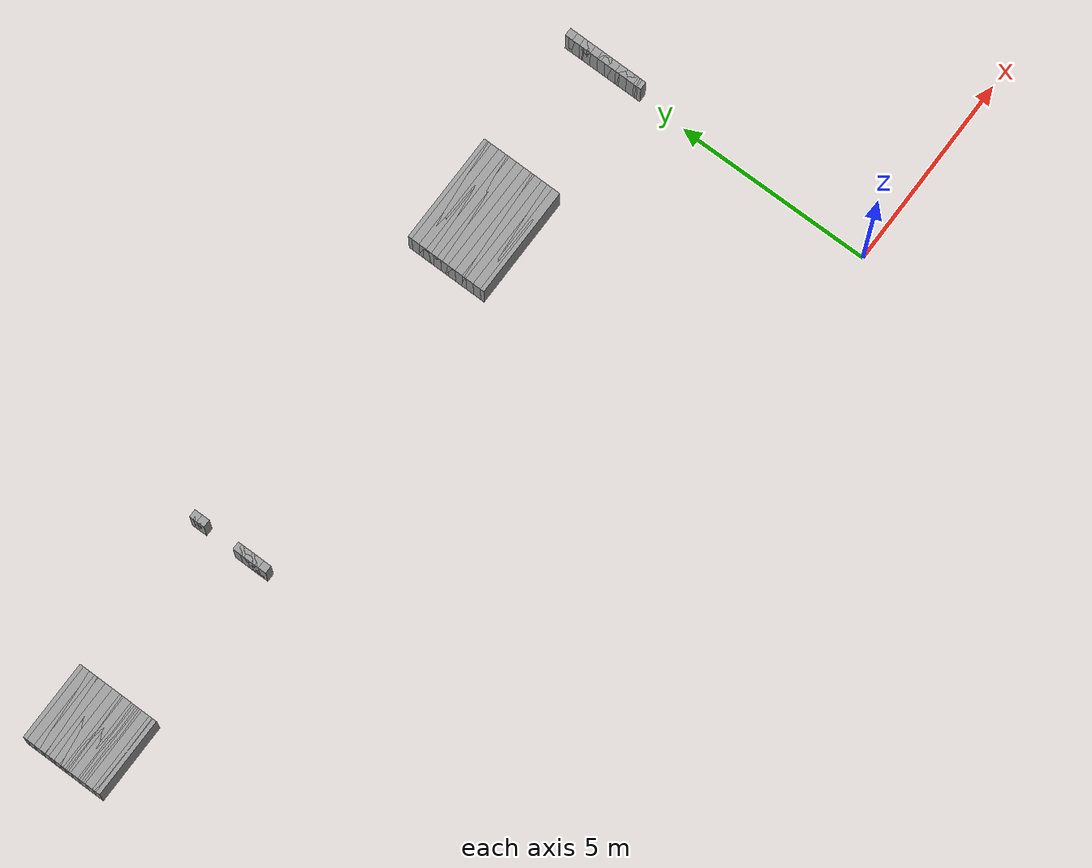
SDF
<sdf version="1.6">
 <world name="GridMap">
  <model name="GridMap">
   <link name="Wall_(189.0,61.0)">
    <collision name="Wall_(189.0,61.0)_Collision">
     <geometry><box><size>2.0 0.2 1.0</size></box></geometry>
     <pose>-18.9 6.1 0.5 0 -0 0</pose>
    </collision>
    <visual name="Wall_(189.0,61.0)_Visual">
     <geometry><box><size>2.0 0.2 1.0</size></box></geometry>
     <pose>-18.9 6.1 0.5 0 -0 0</pose>
     <material>
      <script><uri>file://media/materials/scripts/gazebo.material</uri><name>Gazebo/Grey</name></script>
      <ambient>1 1 1 1</ambient>
     </material>
     <meta><layer>0</layer></meta>
    </visual>
    <pose>0 0 0.5 0 -0 0</pose>
   </link>
   <link name="Wall_(1.0,62.0)">
    <collision name="Wall_(1.0,62.0)_Collision">
     <geometry><box><size>0.2 0.2 1.0</size></box></geometry>
     <pose>-0.1 6.2 0.5 0 -0 0</pose>
    </collision>
    <visual name="Wall_(1.0,62.0)_Visual">
     <geometry><box><size>0.2 0.2 1.0</size></box></geometry>
     <pose>-0.1 6.2 0.5 0 -0 0</pose>
     <material>
      <script><uri>file://media/materials/scripts/gazebo.material</uri><name>Gazebo/Grey</name></script>
      <ambient>1 1 1 1</ambient>
     </material>
     <meta><layer>0</layer></meta>
    </visual>
    <pose>0 0 0.5 0 -0 0</pose>
   </link>
   <link name="Wall_(46.0,62.0)">
    <collision name="Wall_(46.0,62.0)_Collision">
     <geometry><box><size>2.8 0.2 1.0</size></box></geometry>
     <pose>-4.6 6.2 0.5 0 -0 0</pose>
    </collision>
    <visual name="Wall_(46.0,62.0)_Visual">
     <geometry><box><size>2.8 0.2 1.0</size></box></geometry>
     <pose>-4.6 6.2 0.5 0 -0 0</pose>
     <material>
      <script><uri>file://media/materials/scripts/gazebo.material</uri><name>Gazebo/Grey</name></script>
      <ambient>1 1 1 1</ambient>
     </material>
     <meta><layer>0</layer></meta>
    </visual>
    <pose>0 0 0.5 0 -0 0</pose>
   </link>
   <link name="Wall_(138.0,62.0)">
    <collision name="Wall_(138.0,62.0)_Collision">
     <geometry><box><size>0.2 0.2 1.0</size></box></geometry>
     <pose>-13.8 6.2 0.5 0 -0 0</pose>
    </collision>
    <visual name="Wall_(138.0,62.0)_Visual">
     <geometry><box><size>0.2 0.2 1.0</size></box></geometry>
     <pose>-13.8 6.2 0.5 0 -0 0</pose>
     <material>
      <script><uri>file://media/materials/scripts/gazebo.material</uri><name>Gazebo/Grey</name></script>
      <ambient>1 1 1 1</ambient>
     </material>
     <meta><layer>0</layer></meta>
    </visual>
    <pose>0 0 0.5 0 -0 0</pose>
   </link>
   <link name="Wall_(189.0,62.0)">
    <collision name="Wall_(189.0,62.0)_Collision">
     <geometry><box><size>2.0 0.2 1.0</size></box></geometry>
     <pose>-18.9 6.2 0.5 0 -0 0</pose>
    </collision>
    <visual name="Wall_(189.0,62.0)_Visual">
     <geometry><box><size>2.0 0.2 1.0</size></box></geometry>
     <pose>-18.9 6.2 0.5 0 -0 0</pose>
     <material>
      <script><uri>file://media/materials/scripts/gazebo.material</uri><name>Gazebo/Grey</name></script>
      <ambient>1 1 1 1</ambient>
     </material>
     <meta><layer>0</layer></meta>
    </visual>
    <pose>0 0 0.5 0 -0 0</pose>
   </link>
   <link name="Wall_(1.0,63.0)">
    <collision name="Wall_(1.0,63.0)_Collision">
     <geometry><box><size>0.2 0.2 1.0</size></box></geometry>
     <pose>-0.1 6.3 0.5 0 -0 0</pose>
    </collision>
    <visual name="Wall_(1.0,63.0)_Visual">
     <geometry><box><size>0.2 0.2 1.0</size></box></geometry>
     <pose>-0.1 6.3 0.5 0 -0 0</pose>
     <material>
      <script><uri>file://media/materials/scripts/gazebo.material</uri><name>Gazebo/Grey</name></script>
      <ambient>1 1 1 1</ambient>
     </material>
     <meta><layer>0</layer></meta>
    </visual>
    <pose>0 0 0.5 0 -0 0</pose>
   </link>
   <link name="Wall_(46.0,63.0)">
    <collision name="Wall_(46.0,63.0)_Collision">
     <geometry><box><size>2.8 0.2 1.0</size></box></geometry>
     <pose>-4.6 6.3 0.5 0 -0 0</pose>
    </collision>
    <visual name="Wall_(46.0,63.0)_Visual">
     <geometry><box><size>2.8 0.2 1.0</size></box></geometry>
     <pose>-4.6 6.3 0.5 0 -0 0</pose>
     <material>
      <script><uri>file://media/materials/scripts/gazebo.material</uri><name>Gazebo/Grey</name></script>
      <ambient>1 1 1 1</ambient>
     </material>
     <meta><layer>0</layer></meta>
    </visual>
    <pose>0 0 0.5 0 -0 0</pose>
   </link>
   <link name="Wall_(138.0,63.0)">
    <collision name="Wall_(138.0,63.0)_Collision">
     <geometry><box><size>0.2 0.2 1.0</size></box></geometry>
     <pose>-13.8 6.3 0.5 0 -0 0</pose>
    </collision>
    <visual name="Wall_(138.0,63.0)_Visual">
     <geometry><box><size>0.2 0.2 1.0</size></box></geometry>
     <pose>-13.8 6.3 0.5 0 -0 0</pose>
     <material>
      <script><uri>file://media/materials/scripts/gazebo.material</uri><name>Gazebo/Grey</name></script>
      <ambient>1 1 1 1</ambient>
     </material>
     <meta><layer>0</layer></meta>
    </visual>
    <pose>0 0 0.5 0 -0 0</pose>
   </link>
   <link name="Wall_(189.0,63.0)">
    <collision name="Wall_(189.0,63.0)_Collision">
     <geometry><box><size>2.0 0.2 1.0</size></box></geometry>
     <pose>-18.9 6.3 0.5 0 -0 0</pose>
    </collision>
    <visual name="Wall_(189.0,63.0)_Visual">
     <geometry><box><size>2.0 0.2 1.0</size></box></geometry>
     <pose>-18.9 6.3 0.5 0 -0 0</pose>
     <material>
      <script><uri>file://media/materials/scripts/gazebo.material</uri><name>Gazebo/Grey</name></script>
      <ambient>1 1 1 1</ambient>
     </material>
     <meta><layer>0</layer></meta>
    </visual>
    <pose>0 0 0.5 0 -0 0</pose>
   </link>
   <link name="Wall_(1.0,64.0)">
    <collision name="Wall_(1.0,64.0)_Collision">
     <geometry><box><size>0.2 0.2 1.0</size></box></geometry>
     <pose>-0.1 6.4 0.5 0 -0 0</pose>
    </collision>
    <visual name="Wall_(1.0,64.0)_Visual">
     <geometry><box><size>0.2 0.2 1.0</size></box></geometry>
     <pose>-0.1 6.4 0.5 0 -0 0</pose>
     <material>
      <script><uri>file://media/materials/scripts/gazebo.material</uri><name>Gazebo/Grey</name></script>
      <ambient>1 1 1 1</ambient>
     </material>
     <meta><layer>0</layer></meta>
    </visual>
    <pose>0 0 0.5 0 -0 0</pose>
   </link>
   <link name="Wall_(46.0,64.0)">
    <collision name="Wall_(46.0,64.0)_Collision">
     <geometry><box><size>2.8 0.2 1.0</size></box></geometry>
     <pose>-4.6 6.4 0.5 0 -0 0</pose>
    </collision>
    <visual name="Wall_(46.0,64.0)_Visual">
     <geometry><box><size>2.8 0.2 1.0</size></box></geometry>
     <pose>-4.6 6.4 0.5 0 -0 0</pose>
     <material>
      <script><uri>file://media/materials/scripts/gazebo.material</uri><name>Gazebo/Grey</name></script>
      <ambient>1 1 1 1</ambient>
     </material>
     <meta><layer>0</layer></meta>
    </visual>
    <pose>0 0 0.5 0 -0 0</pose>
   </link>
   <link name="Wall_(138.0,64.0)">
    <collision name="Wall_(138.0,64.0)_Collision">
     <geometry><box><size>0.2 0.2 1.0</size></box></geometry>
     <pose>-13.8 6.4 0.5 0 -0 0</pose>
    </collision>
    <visual name="Wall_(138.0,64.0)_Visual">
     <geometry><box><size>0.2 0.2 1.0</size></box></geometry>
     <pose>-13.8 6.4 0.5 0 -0 0</pose>
     <material>
      <script><uri>file://media/materials/scripts/gazebo.material</uri><name>Gazebo/Grey</name></script>
      <ambient>1 1 1 1</ambient>
     </material>
     <meta><layer>0</layer></meta>
    </visual>
    <pose>0 0 0.5 0 -0 0</pose>
   </link>
   <link name="Wall_(189.0,64.0)">
    <collision name="Wall_(189.0,64.0)_Collision">
     <geometry><box><size>2.0 0.2 1.0</size></box></geometry>
     <pose>-18.9 6.4 0.5 0 -0 0</pose>
    </collision>
    <visual name="Wall_(189.0,64.0)_Visual">
     <geometry><box><size>2.0 0.2 1.0</size></box></geometry>
     <pose>-18.9 6.4 0.5 0 -0 0</pose>
     <material>
      <script><uri>file://media/materials/scripts/gazebo.material</uri><name>Gazebo/Grey</name></script>
      <ambient>1 1 1 1</ambient>
     </material>
     <meta><layer>0</layer></meta>
    </visual>
    <pose>0 0 0.5 0 -0 0</pose>
   </link>
   <link name="Wall_(1.0,65.0)">
    <collision name="Wall_(1.0,65.0)_Collision">
     <geometry><box><size>0.2 0.2 1.0</size></box></geometry>
     <pose>-0.1 6.5 0.5 0 -0 0</pose>
    </collision>
    <visual name="Wall_(1.0,65.0)_Visual">
     <geometry><box><size>0.2 0.2 1.0</size></box></geometry>
     <pose>-0.1 6.5 0.5 0 -0 0</pose>
     <material>
      <script><uri>file://media/materials/scripts/gazebo.material</uri><name>Gazebo/Grey</name></script>
      <ambient>1 1 1 1</ambient>
     </material>
     <meta><layer>0</layer></meta>
    </visual>
    <pose>0 0 0.5 0 -0 0</pose>
   </link>
   <link name="Wall_(46.0,65.0)">
    <collision name="Wall_(46.0,65.0)_Collision">
     <geometry><box><size>2.8 0.2 1.0</size></box></geometry>
     <pose>-4.6 6.5 0.5 0 -0 0</pose>
    </collision>
    <visual name="Wall_(46.0,65.0)_Visual">
     <geometry><box><size>2.8 0.2 1.0</size></box></geometry>
     <pose>-4.6 6.5 0.5 0 -0 0</pose>
     <material>
      <script><uri>file://media/materials/scripts/gazebo.material</uri><name>Gazebo/Grey</name></script>
      <ambient>1 1 1 1</ambient>
     </material>
     <meta><layer>0</layer></meta>
    </visual>
    <pose>0 0 0.5 0 -0 0</pose>
   </link>
   <link name="Wall_(138.0,65.0)">
    <collision name="Wall_(138.0,65.0)_Collision">
     <geometry><box><size>0.2 0.2 1.0</size></box></geometry>
     <pose>-13.8 6.5 0.5 0 -0 0</pose>
    </collision>
    <visual name="Wall_(138.0,65.0)_Visual">
     <geometry><box><size>0.2 0.2 1.0</size></box></geometry>
     <pose>-13.8 6.5 0.5 0 -0 0</pose>
     <material>
      <script><uri>file://media/materials/scripts/gazebo.material</uri><name>Gazebo/Grey</name></script>
      <ambient>1 1 1 1</ambient>
     </material>
     <meta><layer>0</layer></meta>
    </visual>
    <pose>0 0 0.5 0 -0 0</pose>
   </link>
   <link name="Wall_(189.0,65.0)">
    <collision name="Wall_(189.0,65.0)_Collision">
     <geometry><box><size>2.0 0.2 1.0</size></box></geometry>
     <pose>-18.9 6.5 0.5 0 -0 0</pose>
    </collision>
    <visual name="Wall_(189.0,65.0)_Visual">
     <geometry><box><size>2.0 0.2 1.0</size></box></geometry>
     <pose>-18.9 6.5 0.5 0 -0 0</pose>
     <material>
      <script><uri>file://media/materials/scripts/gazebo.material</uri><name>Gazebo/Grey</name></script>
      <ambient>1 1 1 1</ambient>
     </material>
     <meta><layer>0</layer></meta>
    </visual>
    <pose>0 0 0.5 0 -0 0</pose>
   </link>
   <link name="Wall_(1.0,66.0)">
    <collision name="Wall_(1.0,66.0)_Collision">
     <geometry><box><size>0.2 0.2 1.0</size></box></geometry>
     <pose>-0.1 6.6 0.5 0 -0 0</pose>
    </collision>
    <visual name="Wall_(1.0,66.0)_Visual">
     <geometry><box><size>0.2 0.2 1.0</size></box></geometry>
     <pose>-0.1 6.6 0.5 0 -0 0</pose>
     <material>
      <script><uri>file://media/materials/scripts/gazebo.material</uri><name>Gazebo/Grey</name></script>
      <ambient>1 1 1 1</ambient>
     </material>
     <meta><layer>0</layer></meta>
    </visual>
    <pose>0 0 0.5 0 -0 0</pose>
   </link>
   <link name="Wall_(46.0,66.0)">
    <collision name="Wall_(46.0,66.0)_Collision">
     <geometry><box><size>2.8 0.2 1.0</size></box></geometry>
     <pose>-4.6 6.6 0.5 0 -0 0</pose>
    </collision>
    <visual name="Wall_(46.0,66.0)_Visual">
     <geometry><box><size>2.8 0.2 1.0</size></box></geometry>
     <pose>-4.6 6.6 0.5 0 -0 0</pose>
     <material>
      <script><uri>file://media/materials/scripts/gazebo.material</uri><name>Gazebo/Grey</name></script>
      <ambient>1 1 1 1</ambient>
     </material>
     <meta><layer>0</layer></meta>
    </visual>
    <pose>0 0 0.5 0 -0 0</pose>
   </link>
   <link name="Wall_(138.0,66.0)">
    <collision name="Wall_(138.0,66.0)_Collision">
     <geometry><box><size>0.2 0.2 1.0</size></box></geometry>
     <pose>-13.8 6.6 0.5 0 -0 0</pose>
    </collision>
    <visual name="Wall_(138.0,66.0)_Visual">
     <geometry><box><size>0.2 0.2 1.0</size></box></geometry>
     <pose>-13.8 6.6 0.5 0 -0 0</pose>
     <material>
      <script><uri>file://media/materials/scripts/gazebo.material</uri><name>Gazebo/Grey</name></script>
      <ambient>1 1 1 1</ambient>
     </material>
     <meta><layer>0</layer></meta>
    </visual>
    <pose>0 0 0.5 0 -0 0</pose>
   </link>
   <link name="Wall_(189.0,66.0)">
    <collision name="Wall_(189.0,66.0)_Collision">
     <geometry><box><size>2.0 0.2 1.0</size></box></geometry>
     <pose>-18.9 6.6 0.5 0 -0 0</pose>
    </collision>
    <visual name="Wall_(189.0,66.0)_Visual">
     <geometry><box><size>2.0 0.2 1.0</size></box></geometry>
     <pose>-18.9 6.6 0.5 0 -0 0</pose>
     <material>
      <script><uri>file://media/materials/scripts/gazebo.material</uri><name>Gazebo/Grey</name></script>
      <ambient>1 1 1 1</ambient>
     </material>
     <meta><layer>0</layer></meta>
    </visual>
    <pose>0 0 0.5 0 -0 0</pose>
   </link>
   <link name="Wall_(1.0,67.0)">
    <collision name="Wall_(1.0,67.0)_Collision">
     <geometry><box><size>0.2 0.2 1.0</size></box></geometry>
     <pose>-0.1 6.7 0.5 0 -0 0</pose>
    </collision>
    <visual name="Wall_(1.0,67.0)_Visual">
     <geometry><box><size>0.2 0.2 1.0</size></box></geometry>
     <pose>-0.1 6.7 0.5 0 -0 0</pose>
     <material>
      <script><uri>file://media/materials/scripts/gazebo.material</uri><name>Gazebo/Grey</name></script>
      <ambient>1 1 1 1</ambient>
     </material>
     <meta><layer>0</layer></meta>
    </visual>
    <pose>0 0 0.5 0 -0 0</pose>
   </link>
   <link name="Wall_(46.0,67.0)">
    <collision name="Wall_(46.0,67.0)_Collision">
     <geometry><box><size>2.8 0.2 1.0</size></box></geometry>
     <pose>-4.6 6.7 0.5 0 -0 0</pose>
    </collision>
    <visual name="Wall_(46.0,67.0)_Visual">
     <geometry><box><size>2.8 0.2 1.0</size></box></geometry>
     <pose>-4.6 6.7 0.5 0 -0 0</pose>
     <material>
      <script><uri>file://media/materials/scripts/gazebo.material</uri><name>Gazebo/Grey</name></script>
      <ambient>1 1 1 1</ambient>
     </material>
     <meta><layer>0</layer></meta>
    </visual>
    <pose>0 0 0.5 0 -0 0</pose>
   </link>
   <link name="Wall_(138.0,67.0)">
    <collision name="Wall_(138.0,67.0)_Collision">
     <geometry><box><size>0.2 0.2 1.0</size></box></geometry>
     <pose>-13.8 6.7 0.5 0 -0 0</pose>
    </collision>
    <visual name="Wall_(138.0,67.0)_Visual">
     <geometry><box><size>0.2 0.2 1.0</size></box></geometry>
     <pose>-13.8 6.7 0.5 0 -0 0</pose>
     <material>
      <script><uri>file://media/materials/scripts/gazebo.material</uri><name>Gazebo/Grey</name></script>
      <ambient>1 1 1 1</ambient>
     </material>
     <meta><layer>0</layer></meta>
    </visual>
    <pose>0 0 0.5 0 -0 0</pose>
   </link>
   <link name="Wall_(189.0,67.0)">
    <collision name="Wall_(189.0,67.0)_Collision">
     <geometry><box><size>2.0 0.2 1.0</size></box></geometry>
     <pose>-18.9 6.7 0.5 0 -0 0</pose>
    </collision>
    <visual name="Wall_(189.0,67.0)_Visual">
     <geometry><box><size>2.0 0.2 1.0</size></box></geometry>
     <pose>-18.9 6.7 0.5 0 -0 0</pose>
     <material>
      <script><uri>file://media/materials/scripts/gazebo.material</uri><name>Gazebo/Grey</name></script>
      <ambient>1 1 1 1</ambient>
     </material>
     <meta><layer>0</layer></meta>
    </visual>
    <pose>0 0 0.5 0 -0 0</pose>
   </link>
   <link name="Wall_(1.0,68.0)">
    <collision name="Wall_(1.0,68.0)_Collision">
     <geometry><box><size>0.2 0.2 1.0</size></box></geometry>
     <pose>-0.1 6.8 0.5 0 -0 0</pose>
    </collision>
    <visual name="Wall_(1.0,68.0)_Visual">
     <geometry><box><size>0.2 0.2 1.0</size></box></geometry>
     <pose>-0.1 6.8 0.5 0 -0 0</pose>
     <material>
      <script><uri>file://media/materials/scripts/gazebo.material</uri><name>Gazebo/Grey</name></script>
      <ambient>1 1 1 1</ambient>
     </material>
     <meta><layer>0</layer></meta>
    </visual>
    <pose>0 0 0.5 0 -0 0</pose>
   </link>
   <link name="Wall_(46.0,68.0)">
    <collision name="Wall_(46.0,68.0)_Collision">
     <geometry><box><size>2.8 0.2 1.0</size></box></geometry>
     <pose>-4.6 6.8 0.5 0 -0 0</pose>
    </collision>
    <visual name="Wall_(46.0,68.0)_Visual">
     <geometry><box><size>2.8 0.2 1.0</size></box></geometry>
     <pose>-4.6 6.8 0.5 0 -0 0</pose>
     <material>
      <script><uri>file://media/materials/scripts/gazebo.material</uri><name>Gazebo/Grey</name></script>
      <ambient>1 1 1 1</ambient>
     </material>
     <meta><layer>0</layer></meta>
    </visual>
    <pose>0 0 0.5 0 -0 0</pose>
   </link>
   <link name="Wall_(138.0,68.0)">
    <collision name="Wall_(138.0,68.0)_Collision">
     <geometry><box><size>0.2 0.2 1.0</size></box></geometry>
     <pose>-13.8 6.8 0.5 0 -0 0</pose>
    </collision>
    <visual name="Wall_(138.0,68.0)_Visual">
     <geometry><box><size>0.2 0.2 1.0</size></box></geometry>
     <pose>-13.8 6.8 0.5 0 -0 0</pose>
     <material>
      <script><uri>file://media/materials/scripts/gazebo.material</uri><name>Gazebo/Grey</name></script>
      <ambient>1 1 1 1</ambient>
     </material>
     <meta><layer>0</layer></meta>
    </visual>
    <pose>0 0 0.5 0 -0 0</pose>
   </link>
   <link name="Wall_(189.0,68.0)">
    <collision name="Wall_(189.0,68.0)_Collision">
     <geometry><box><size>2.0 0.2 1.0</size></box></geometry>
     <pose>-18.9 6.8 0.5 0 -0 0</pose>
    </collision>
    <visual name="Wall_(189.0,68.0)_Visual">
     <geometry><box><size>2.0 0.2 1.0</size></box></geometry>
     <pose>-18.9 6.8 0.5 0 -0 0</pose>
     <material>
      <script><uri>file://media/materials/scripts/gazebo.material</uri><name>Gazebo/Grey</name></script>
      <ambient>1 1 1 1</ambient>
     </material>
     <meta><layer>0</layer></meta>
    </visual>
    <pose>0 0 0.5 0 -0 0</pose>
   </link>
   <link name="Wall_(1.0,69.0)">
    <collision name="Wall_(1.0,69.0)_Collision">
     <geometry><box><size>0.2 0.2 1.0</size></box></geometry>
     <pose>-0.1 6.9 0.5 0 -0 0</pose>
    </collision>
    <visual name="Wall_(1.0,69.0)_Visual">
     <geometry><box><size>0.2 0.2 1.0</size></box></geometry>
     <pose>-0.1 6.9 0.5 0 -0 0</pose>
     <material>
      <script><uri>file://media/materials/scripts/gazebo.material</uri><name>Gazebo/Grey</name></script>
      <ambient>1 1 1 1</ambient>
     </material>
     <meta><layer>0</layer></meta>
    </visual>
    <pose>0 0 0.5 0 -0 0</pose>
   </link>
   <link name="Wall_(46.0,69.0)">
    <collision name="Wall_(46.0,69.0)_Collision">
     <geometry><box><size>2.8 0.2 1.0</size></box></geometry>
     <pose>-4.6 6.9 0.5 0 -0 0</pose>
    </collision>
    <visual name="Wall_(46.0,69.0)_Visual">
     <geometry><box><size>2.8 0.2 1.0</size></box></geometry>
     <pose>-4.6 6.9 0.5 0 -0 0</pose>
     <material>
      <script><uri>file://media/materials/scripts/gazebo.material</uri><name>Gazebo/Grey</name></script>
      <ambient>1 1 1 1</ambient>
     </material>
     <meta><layer>0</layer></meta>
    </visual>
    <pose>0 0 0.5 0 -0 0</pose>
   </link>
   <link name="Wall_(138.0,69.0)">
    <collision name="Wall_(138.0,69.0)_Collision">
     <geometry><box><size>0.2 0.2 1.0</size></box></geometry>
     <pose>-13.8 6.9 0.5 0 -0 0</pose>
    </collision>
    <visual name="Wall_(138.0,69.0)_Visual">
     <geometry><box><size>0.2 0.2 1.0</size></box></geometry>
     <pose>-13.8 6.9 0.5 0 -0 0</pose>
     <material>
      <script><uri>file://media/materials/scripts/gazebo.material</uri><name>Gazebo/Grey</name></script>
      <ambient>1 1 1 1</ambient>
     </material>
     <meta><layer>0</layer></meta>
    </visual>
    <pose>0 0 0.5 0 -0 0</pose>
   </link>
   <link name="Wall_(189.0,69.0)">
    <collision name="Wall_(189.0,69.0)_Collision">
     <geometry><box><size>2.0 0.2 1.0</size></box></geometry>
     <pose>-18.9 6.9 0.5 0 -0 0</pose>
    </collision>
    <visual name="Wall_(189.0,69.0)_Visual">
     <geometry><box><size>2.0 0.2 1.0</size></box></geometry>
     <pose>-18.9 6.9 0.5 0 -0 0</pose>
     <material>
      <script><uri>file://media/materials/scripts/gazebo.material</uri><name>Gazebo/Grey</name></script>
      <ambient>1 1 1 1</ambient>
     </material>
     <meta><layer>0</layer></meta>
    </visual>
    <pose>0 0 0.5 0 -0 0</pose>
   </link>
   <link name="Wall_(1.0,70.0)">
    <collision name="Wall_(1.0,70.0)_Collision">
     <geometry><box><size>0.2 0.2 1.0</size></box></geometry>
     <pose>-0.1 7.0 0.5 0 -0 0</pose>
    </collision>
    <visual name="Wall_(1.0,70.0)_Visual">
     <geometry><box><size>0.2 0.2 1.0</size></box></geometry>
     <pose>-0.1 7.0 0.5 0 -0 0</pose>
     <material>
      <script><uri>file://media/materials/scripts/gazebo.material</uri><name>Gazebo/Grey</name></script>
      <ambient>1 1 1 1</ambient>
     </material>
     <meta><layer>0</layer></meta>
    </visual>
    <pose>0 0 0.5 0 -0 0</pose>
   </link>
   <link name="Wall_(46.0,70.0)">
    <collision name="Wall_(46.0,70.0)_Collision">
     <geometry><box><size>2.8 0.2 1.0</size></box></geometry>
     <pose>-4.6 7.0 0.5 0 -0 0</pose>
    </collision>
    <visual name="Wall_(46.0,70.0)_Visual">
     <geometry><box><size>2.8 0.2 1.0</size></box></geometry>
     <pose>-4.6 7.0 0.5 0 -0 0</pose>
     <material>
      <script><uri>file://media/materials/scripts/gazebo.material</uri><name>Gazebo/Grey</name></script>
      <ambient>1 1 1 1</ambient>
     </material>
     <meta><layer>0</layer></meta>
    </visual>
    <pose>0 0 0.5 0 -0 0</pose>
   </link>
   <link name="Wall_(189.0,70.0)">
    <collision name="Wall_(189.0,70.0)_Collision">
     <geometry><box><size>2.0 0.2 1.0</size></box></geometry>
     <pose>-18.9 7.0 0.5 0 -0 0</pose>
    </collision>
    <visual name="Wall_(189.0,70.0)_Visual">
     <geometry><box><size>2.0 0.2 1.0</size></box></geometry>
     <pose>-18.9 7.0 0.5 0 -0 0</pose>
     <material>
      <script><uri>file://media/materials/scripts/gazebo.material</uri><name>Gazebo/Grey</name></script>
      <ambient>1 1 1 1</ambient>
     </material>
     <meta><layer>0</layer></meta>
    </visual>
    <pose>0 0 0.5 0 -0 0</pose>
   </link>
   <link name="Wall_(1.0,71.0)">
    <collision name="Wall_(1.0,71.0)_Collision">
     <geometry><box><size>0.2 0.2 1.0</size></box></geometry>
     <pose>-0.1 7.1 0.5 0 -0 0</pose>
    </collision>
    <visual name="Wall_(1.0,71.0)_Visual">
     <geometry><box><size>0.2 0.2 1.0</size></box></geometry>
     <pose>-0.1 7.1 0.5 0 -0 0</pose>
     <material>
      <script><uri>file://media/materials/scripts/gazebo.material</uri><name>Gazebo/Grey</name></script>
      <ambient>1 1 1 1</ambient>
     </material>
     <meta><layer>0</layer></meta>
    </visual>
    <pose>0 0 0.5 0 -0 0</pose>
   </link>
   <link name="Wall_(46.0,71.0)">
    <collision name="Wall_(46.0,71.0)_Collision">
     <geometry><box><size>2.8 0.2 1.0</size></box></geometry>
     <pose>-4.6 7.1 0.5 0 -0 0</pose>
    </collision>
    <visual name="Wall_(46.0,71.0)_Visual">
     <geometry><box><size>2.8 0.2 1.0</size></box></geometry>
     <pose>-4.6 7.1 0.5 0 -0 0</pose>
     <material>
      <script><uri>file://media/materials/scripts/gazebo.material</uri><name>Gazebo/Grey</name></script>
      <ambient>1 1 1 1</ambient>
     </material>
     <meta><layer>0</layer></meta>
    </visual>
    <pose>0 0 0.5 0 -0 0</pose>
   </link>
   <link name="Wall_(189.0,71.0)">
    <collision name="Wall_(189.0,71.0)_Collision">
     <geometry><box><size>2.0 0.2 1.0</size></box></geometry>
     <pose>-18.9 7.1 0.5 0 -0 0</pose>
    </collision>
    <visual name="Wall_(189.0,71.0)_Visual">
     <geometry><box><size>2.0 0.2 1.0</size></box></geometry>
     <pose>-18.9 7.1 0.5 0 -0 0</pose>
     <material>
      <script><uri>file://media/materials/scripts/gazebo.material</uri><name>Gazebo/Grey</name></script>
      <ambient>1 1 1 1</ambient>
     </material>
     <meta><layer>0</layer></meta>
    </visual>
    <pose>0 0 0.5 0 -0 0</pose>
   </link>
   <link name="Wall_(1.0,72.0)">
    <collision name="Wall_(1.0,72.0)_Collision">
     <geometry><box><size>0.2 0.2 1.0</size></box></geometry>
     <pose>-0.1 7.2 0.5 0 -0 0</pose>
    </collision>
    <visual name="Wall_(1.0,72.0)_Visual">
     <geometry><box><size>0.2 0.2 1.0</size></box></geometry>
     <pose>-0.1 7.2 0.5 0 -0 0</pose>
     <material>
      <script><uri>file://media/materials/scripts/gazebo.material</uri><name>Gazebo/Grey</name></script>
      <ambient>1 1 1 1</ambient>
     </material>
     <meta><layer>0</layer></meta>
    </visual>
    <pose>0 0 0.5 0 -0 0</pose>
   </link>
   <link name="Wall_(46.0,72.0)">
    <collision name="Wall_(46.0,72.0)_Collision">
     <geometry><box><size>2.8 0.2 1.0</size></box></geometry>
     <pose>-4.6 7.2 0.5 0 -0 0</pose>
    </collision>
    <visual name="Wall_(46.0,72.0)_Visual">
     <geometry><box><size>2.8 0.2 1.0</size></box></geometry>
     <pose>-4.6 7.2 0.5 0 -0 0</pose>
     <material>
      <script><uri>file://media/materials/scripts/gazebo.material</uri><name>Gazebo/Grey</name></script>
      <ambient>1 1 1 1</ambient>
     </material>
     <meta><layer>0</layer></meta>
    </visual>
    <pose>0 0 0.5 0 -0 0</pose>
   </link>
   <link name="Wall_(189.0,72.0)">
    <collision name="Wall_(189.0,72.0)_Collision">
     <geometry><box><size>2.0 0.2 1.0</size></box></geometry>
     <pose>-18.9 7.2 0.5 0 -0 0</pose>
    </collision>
    <visual name="Wall_(189.0,72.0)_Visual">
     <geometry><box><size>2.0 0.2 1.0</size></box></geometry>
     <pose>-18.9 7.2 0.5 0 -0 0</pose>
     <material>
      <script><uri>file://media/materials/scripts/gazebo.material</uri><name>Gazebo/Grey</name></script>
      <ambient>1 1 1 1</ambient>
     </material>
     <meta><layer>0</layer></meta>
    </visual>
    <pose>0 0 0.5 0 -0 0</pose>
   </link>
   <link name="Wall_(1.0,73.0)">
    <collision name="Wall_(1.0,73.0)_Collision">
     <geometry><box><size>0.2 0.2 1.0</size></box></geometry>
     <pose>-0.1 7.3 0.5 0 -0 0</pose>
    </collision>
    <visual name="Wall_(1.0,73.0)_Visual">
     <geometry><box><size>0.2 0.2 1.0</size></box></geometry>
     <pose>-0.1 7.3 0.5 0 -0 0</pose>
     <material>
      <script><uri>file://media/materials/scripts/gazebo.material</uri><name>Gazebo/Grey</name></script>
      <ambient>1 1 1 1</ambient>
     </material>
     <meta><layer>0</layer></meta>
    </visual>
    <pose>0 0 0.5 0 -0 0</pose>
   </link>
   <link name="Wall_(46.0,73.0)">
    <collision name="Wall_(46.0,73.0)_Collision">
     <geometry><box><size>2.8 0.2 1.0</size></box></geometry>
     <pose>-4.6 7.3 0.5 0 -0 0</pose>
    </collision>
    <visual name="Wall_(46.0,73.0)_Visual">
     <geometry><box><size>2.8 0.2 1.0</size></box></geometry>
     <pose>-4.6 7.3 0.5 0 -0 0</pose>
     <material>
      <script><uri>file://media/materials/scripts/gazebo.material</uri><name>Gazebo/Grey</name></script>
      <ambient>1 1 1 1</ambient>
     </material>
     <meta><layer>0</layer></meta>
    </visual>
    <pose>0 0 0.5 0 -0 0</pose>
   </link>
   <link name="Wall_(189.0,73.0)">
    <collision name="Wall_(189.0,73.0)_Collision">
     <geometry><box><size>2.0 0.2 1.0</size></box></geometry>
     <pose>-18.9 7.3 0.5 0 -0 0</pose>
    </collision>
    <visual name="Wall_(189.0,73.0)_Visual">
     <geometry><box><size>2.0 0.2 1.0</size></box></geometry>
     <pose>-18.9 7.3 0.5 0 -0 0</pose>
     <material>
      <script><uri>file://media/materials/scripts/gazebo.material</uri><name>Gazebo/Grey</name></script>
      <ambient>1 1 1 1</ambient>
     </material>
     <meta><layer>0</layer></meta>
    </visual>
    <pose>0 0 0.5 0 -0 0</pose>
   </link>
   <link name="Wall_(1.0,74.0)">
    <collision name="Wall_(1.0,74.0)_Collision">
     <geometry><box><size>0.2 0.2 1.0</size></box></geometry>
     <pose>-0.1 7.4 0.5 0 -0 0</pose>
    </collision>
    <visual name="Wall_(1.0,74.0)_Visual">
     <geometry><box><size>0.2 0.2 1.0</size></box></geometry>
     <pose>-0.1 7.4 0.5 0 -0 0</pose>
     <material>
      <script><uri>file://media/materials/scripts/gazebo.material</uri><name>Gazebo/Grey</name></script>
      <ambient>1 1 1 1</ambient>
     </material>
     <meta><layer>0</layer></meta>
    </visual>
    <pose>0 0 0.5 0 -0 0</pose>
   </link>
   <link name="Wall_(46.0,74.0)">
    <collision name="Wall_(46.0,74.0)_Collision">
     <geometry><box><size>2.8 0.2 1.0</size></box></geometry>
     <pose>-4.6 7.4 0.5 0 -0 0</pose>
    </collision>
    <visual name="Wall_(46.0,74.0)_Visual">
     <geometry><box><size>2.8 0.2 1.0</size></box></geometry>
     <pose>-4.6 7.4 0.5 0 -0 0</pose>
     <material>
      <script><uri>file://media/materials/scripts/gazebo.material</uri><name>Gazebo/Grey</name></script>
      <ambient>1 1 1 1</ambient>
     </material>
     <meta><layer>0</layer></meta>
    </visual>
    <pose>0 0 0.5 0 -0 0</pose>
   </link>
   <link name="Wall_(189.0,74.0)">
    <collision name="Wall_(189.0,74.0)_Collision">
     <geometry><box><size>2.0 0.2 1.0</size></box></geometry>
     <pose>-18.9 7.4 0.5 0 -0 0</pose>
    </collision>
    <visual name="Wall_(189.0,74.0)_Visual">
     <geometry><box><size>2.0 0.2 1.0</size></box></geometry>
     <pose>-18.9 7.4 0.5 0 -0 0</pose>
     <material>
      <script><uri>file://media/materials/scripts/gazebo.material</uri><name>Gazebo/Grey</name></script>
      <ambient>1 1 1 1</ambient>
     </material>
     <meta><layer>0</layer></meta>
    </visual>
    <pose>0 0 0.5 0 -0 0</pose>
   </link>
   <link name="Wall_(1.0,75.0)">
    <collision name="Wall_(1.0,75.0)_Collision">
     <geometry><box><size>0.2 0.2 1.0</size></box></geometry>
     <pose>-0.1 7.5 0.5 0 -0 0</pose>
    </collision>
    <visual name="Wall_(1.0,75.0)_Visual">
     <geometry><box><size>0.2 0.2 1.0</size></box></geometry>
     <pose>-0.1 7.5 0.5 0 -0 0</pose>
     <material>
      <script><uri>file://media/materials/scripts/gazebo.material</uri><name>Gazebo/Grey</name></script>
      <ambient>1 1 1 1</ambient>
     </material>
     <meta><layer>0</layer></meta>
    </visual>
    <pose>0 0 0.5 0 -0 0</pose>
   </link>
   <link name="Wall_(46.0,75.0)">
    <collision name="Wall_(46.0,75.0)_Collision">
     <geometry><box><size>2.8 0.2 1.0</size></box></geometry>
     <pose>-4.6 7.5 0.5 0 -0 0</pose>
    </collision>
    <visual name="Wall_(46.0,75.0)_Visual">
     <geometry><box><size>2.8 0.2 1.0</size></box></geometry>
     <pose>-4.6 7.5 0.5 0 -0 0</pose>
     <material>
      <script><uri>file://media/materials/scripts/gazebo.material</uri><name>Gazebo/Grey</name></script>
      <ambient>1 1 1 1</ambient>
     </material>
     <meta><layer>0</layer></meta>
    </visual>
    <pose>0 0 0.5 0 -0 0</pose>
   </link>
   <link name="Wall_(189.0,75.0)">
    <collision name="Wall_(189.0,75.0)_Collision">
     <geometry><box><size>2.0 0.2 1.0</size></box></geometry>
     <pose>-18.9 7.5 0.5 0 -0 0</pose>
    </collision>
    <visual name="Wall_(189.0,75.0)_Visual">
     <geometry><box><size>2.0 0.2 1.0</size></box></geometry>
     <pose>-18.9 7.5 0.5 0 -0 0</pose>
     <material>
      <script><uri>file://media/materials/scripts/gazebo.material</uri><name>Gazebo/Grey</name></script>
      <ambient>1 1 1 1</ambient>
     </material>
     <meta><layer>0</layer></meta>
    </visual>
    <pose>0 0 0.5 0 -0 0</pose>
   </link>
   <link name="Wall_(1.0,76.0)">
    <collision name="Wall_(1.0,76.0)_Collision">
     <geometry><box><size>0.2 0.2 1.0</size></box></geometry>
     <pose>-0.1 7.6 0.5 0 -0 0</pose>
    </collision>
    <visual name="Wall_(1.0,76.0)_Visual">
     <geometry><box><size>0.2 0.2 1.0</size></box></geometry>
     <pose>-0.1 7.6 0.5 0 -0 0</pose>
     <material>
      <script><uri>file://media/materials/scripts/gazebo.material</uri><name>Gazebo/Grey</name></script>
      <ambient>1 1 1 1</ambient>
     </material>
     <meta><layer>0</layer></meta>
    </visual>
    <pose>0 0 0.5 0 -0 0</pose>
   </link>
   <link name="Wall_(46.0,76.0)">
    <collision name="Wall_(46.0,76.0)_Collision">
     <geometry><box><size>2.8 0.2 1.0</size></box></geometry>
     <pose>-4.6 7.6 0.5 0 -0 0</pose>
    </collision>
    <visual name="Wall_(46.0,76.0)_Visual">
     <geometry><box><size>2.8 0.2 1.0</size></box></geometry>
     <pose>-4.6 7.6 0.5 0 -0 0</pose>
     <material>
      <script><uri>file://media/materials/scripts/gazebo.material</uri><name>Gazebo/Grey</name></script>
      <ambient>1 1 1 1</ambient>
     </material>
     <meta><layer>0</layer></meta>
    </visual>
    <pose>0 0 0.5 0 -0 0</pose>
   </link>
   <link name="Wall_(189.0,76.0)">
    <collision name="Wall_(189.0,76.0)_Collision">
     <geometry><box><size>2.0 0.2 1.0</size></box></geometry>
     <pose>-18.9 7.6 0.5 0 -0 0</pose>
    </collision>
    <visual name="Wall_(189.0,76.0)_Visual">
     <geometry><box><size>2.0 0.2 1.0</size></box></geometry>
     <pose>-18.9 7.6 0.5 0 -0 0</pose>
     <material>
      <script><uri>file://media/materials/scripts/gazebo.material</uri><name>Gazebo/Grey</name></script>
      <ambient>1 1 1 1</ambient>
     </material>
     <meta><layer>0</layer></meta>
    </visual>
    <pose>0 0 0.5 0 -0 0</pose>
   </link>
   <link name="Wall_(1.0,77.0)">
    <collision name="Wall_(1.0,77.0)_Collision">
     <geometry><box><size>0.2 0.2 1.0</size></box></geometry>
     <pose>-0.1 7.7 0.5 0 -0 0</pose>
    </collision>
    <visual name="Wall_(1.0,77.0)_Visual">
     <geometry><box><size>0.2 0.2 1.0</size></box></geometry>
     <pose>-0.1 7.7 0.5 0 -0 0</pose>
     <material>
      <script><uri>file://media/materials/scripts/gazebo.material</uri><name>Gazebo/Grey</name></script>
      <ambient>1 1 1 1</ambient>
     </material>
     <meta><layer>0</layer></meta>
    </visual>
    <pose>0 0 0.5 0 -0 0</pose>
   </link>
   <link name="Wall_(46.0,77.0)">
    <collision name="Wall_(46.0,77.0)_Collision">
     <geometry><box><size>2.8 0.2 1.0</size></box></geometry>
     <pose>-4.6 7.7 0.5 0 -0 0</pose>
    </collision>
    <visual name="Wall_(46.0,77.0)_Visual">
     <geometry><box><size>2.8 0.2 1.0</size></box></geometry>
     <pose>-4.6 7.7 0.5 0 -0 0</pose>
     <material>
      <script><uri>file://media/materials/scripts/gazebo.material</uri><name>Gazebo/Grey</name></script>
      <ambient>1 1 1 1</ambient>
     </material>
     <meta><layer>0</layer></meta>
    </visual>
    <pose>0 0 0.5 0 -0 0</pose>
   </link>
   <link name="Wall_(189.0,77.0)">
    <collision name="Wall_(189.0,77.0)_Collision">
     <geometry><box><size>2.0 0.2 1.0</size></box></geometry>
     <pose>-18.9 7.7 0.5 0 -0 0</pose>
    </collision>
    <visual name="Wall_(189.0,77.0)_Visual">
     <geometry><box><size>2.0 0.2 1.0</size></box></geometry>
     <pose>-18.9 7.7 0.5 0 -0 0</pose>
     <material>
      <script><uri>file://media/materials/scripts/gazebo.material</uri><name>Gazebo/Grey</name></script>
      <ambient>1 1 1 1</ambient>
     </material>
     <meta><layer>0</layer></meta>
    </visual>
    <pose>0 0 0.5 0 -0 0</pose>
   </link>
   <link name="Wall_(1.0,78.0)">
    <collision name="Wall_(1.0,78.0)_Collision">
     <geometry><box><size>0.2 0.2 1.0</size></box></geometry>
     <pose>-0.1 7.8 0.5 0 -0 0</pose>
    </collision>
    <visual name="Wall_(1.0,78.0)_Visual">
     <geometry><box><size>0.2 0.2 1.0</size></box></geometry>
     <pose>-0.1 7.8 0.5 0 -0 0</pose>
     <material>
      <script><uri>file://media/materials/scripts/gazebo.material</uri><name>Gazebo/Grey</name></script>
      <ambient>1 1 1 1</ambient>
     </material>
     <meta><layer>0</layer></meta>
    </visual>
    <pose>0 0 0.5 0 -0 0</pose>
   </link>
   <link name="Wall_(46.0,78.0)">
    <collision name="Wall_(46.0,78.0)_Collision">
     <geometry><box><size>2.8 0.2 1.0</size></box></geometry>
     <pose>-4.6 7.8 0.5 0 -0 0</pose>
    </collision>
    <visual name="Wall_(46.0,78.0)_Visual">
     <geometry><box><size>2.8 0.2 1.0</size></box></geometry>
     <pose>-4.6 7.8 0.5 0 -0 0</pose>
     <material>
      <script><uri>file://media/materials/scripts/gazebo.material</uri><name>Gazebo/Grey</name></script>
      <ambient>1 1 1 1</ambient>
     </material>
     <meta><layer>0</layer></meta>
    </visual>
    <pose>0 0 0.5 0 -0 0</pose>
   </link>
   <link name="Wall_(189.0,78.0)">
    <collision name="Wall_(189.0,78.0)_Collision">
     <geometry><box><size>2.0 0.2 1.0</size></box></geometry>
     <pose>-18.9 7.8 0.5 0 -0 0</pose>
    </collision>
    <visual name="Wall_(189.0,78.0)_Visual">
     <geometry><box><size>2.0 0.2 1.0</size></box></geometry>
     <pose>-18.9 7.8 0.5 0 -0 0</pose>
     <material>
      <script><uri>file://media/materials/scripts/gazebo.material</uri><name>Gazebo/Grey</name></script>
      <ambient>1 1 1 1</ambient>
     </material>
     <meta><layer>0</layer></meta>
    </visual>
    <pose>0 0 0.5 0 -0 0</pose>
   </link>
   <link name="Wall_(1.0,79.0)">
    <collision name="Wall_(1.0,79.0)_Collision">
     <geometry><box><size>0.2 0.2 1.0</size></box></geometry>
     <pose>-0.1 7.9 0.5 0 -0 0</pose>
    </collision>
    <visual name="Wall_(1.0,79.0)_Visual">
     <geometry><box><size>0.2 0.2 1.0</size></box></geometry>
     <pose>-0.1 7.9 0.5 0 -0 0</pose>
     <material>
      <script><uri>file://media/materials/scripts/gazebo.material</uri><name>Gazebo/Grey</name></script>
      <ambient>1 1 1 1</ambient>
     </material>
     <meta><layer>0</layer></meta>
    </visual>
    <pose>0 0 0.5 0 -0 0</pose>
   </link>
   <link name="Wall_(46.0,79.0)">
    <collision name="Wall_(46.0,79.0)_Collision">
     <geometry><box><size>2.8 0.2 1.0</size></box></geometry>
     <pose>-4.6 7.9 0.5 0 -0 0</pose>
    </collision>
    <visual name="Wall_(46.0,79.0)_Visual">
     <geometry><box><size>2.8 0.2 1.0</size></box></geometry>
     <pose>-4.6 7.9 0.5 0 -0 0</pose>
     <material>
      <script><uri>file://media/materials/scripts/gazebo.material</uri><name>Gazebo/Grey</name></script>
      <ambient>1 1 1 1</ambient>
     </material>
     <meta><layer>0</layer></meta>
    </visual>
    <pose>0 0 0.5 0 -0 0</pose>
   </link>
   <link name="Wall_(138.0,79.0)">
    <collision name="Wall_(138.0,79.0)_Collision">
     <geometry><box><size>0.2 0.2 1.0</size></box></geometry>
     <pose>-13.8 7.9 0.5 0 -0 0</pose>
    </collision>
    <visual name="Wall_(138.0,79.0)_Visual">
     <geometry><box><size>0.2 0.2 1.0</size></box></geometry>
     <pose>-13.8 7.9 0.5 0 -0 0</pose>
     <material>
      <script><uri>file://media/materials/scripts/gazebo.material</uri><name>Gazebo/Grey</name></script>
      <ambient>1 1 1 1</ambient>
     </material>
     <meta><layer>0</layer></meta>
    </visual>
    <pose>0 0 0.5 0 -0 0</pose>
   </link>
   <link name="Wall_(189.0,79.0)">
    <collision name="Wall_(189.0,79.0)_Collision">
     <geometry><box><size>2.0 0.2 1.0</size></box></geometry>
     <pose>-18.9 7.9 0.5 0 -0 0</pose>
    </collision>
    <visual name="Wall_(189.0,79.0)_Visual">
     <geometry><box><size>2.0 0.2 1.0</size></box></geometry>
     <pose>-18.9 7.9 0.5 0 -0 0</pose>
     <material>
      <script><uri>file://media/materials/scripts/gazebo.material</uri><name>Gazebo/Grey</name></script>
      <ambient>1 1 1 1</ambient>
     </material>
     <meta><layer>0</layer></meta>
    </visual>
    <pose>0 0 0.5 0 -0 0</pose>
   </link>
   <link name="Wall_(1.0,80.0)">
    <collision name="Wall_(1.0,80.0)_Collision">
     <geometry><box><size>0.2 0.2 1.0</size></box></geometry>
     <pose>-0.1 8.0 0.5 0 -0 0</pose>
    </collision>
    <visual name="Wall_(1.0,80.0)_Visual">
     <geometry><box><size>0.2 0.2 1.0</size></box></geometry>
     <pose>-0.1 8.0 0.5 0 -0 0</pose>
     <material>
      <script><uri>file://media/materials/scripts/gazebo.material</uri><name>Gazebo/Grey</name></script>
      <ambient>1 1 1 1</ambient>
     </material>
     <meta><layer>0</layer></meta>
    </visual>
    <pose>0 0 0.5 0 -0 0</pose>
   </link>
   <link name="Wall_(46.0,80.0)">
    <collision name="Wall_(46.0,80.0)_Collision">
     <geometry><box><size>2.8 0.2 1.0</size></box></geometry>
     <pose>-4.6 8.0 0.5 0 -0 0</pose>
    </collision>
    <visual name="Wall_(46.0,80.0)_Visual">
     <geometry><box><size>2.8 0.2 1.0</size></box></geometry>
     <pose>-4.6 8.0 0.5 0 -0 0</pose>
     <material>
      <script><uri>file://media/materials/scripts/gazebo.material</uri><name>Gazebo/Grey</name></script>
      <ambient>1 1 1 1</ambient>
     </material>
     <meta><layer>0</layer></meta>
    </visual>
    <pose>0 0 0.5 0 -0 0</pose>
   </link>
   <link name="Wall_(138.0,80.0)">
    <collision name="Wall_(138.0,80.0)_Collision">
     <geometry><box><size>0.2 0.2 1.0</size></box></geometry>
     <pose>-13.8 8.0 0.5 0 -0 0</pose>
    </collision>
    <visual name="Wall_(138.0,80.0)_Visual">
     <geometry><box><size>0.2 0.2 1.0</size></box></geometry>
     <pose>-13.8 8.0 0.5 0 -0 0</pose>
     <material>
      <script><uri>file://media/materials/scripts/gazebo.material</uri><name>Gazebo/Grey</name></script>
      <ambient>1 1 1 1</ambient>
     </material>
     <meta><layer>0</layer></meta>
    </visual>
    <pose>0 0 0.5 0 -0 0</pose>
   </link>
   <link name="Wall_(189.0,80.0)">
    <collision name="Wall_(189.0,80.0)_Collision">
     <geometry><box><size>2.0 0.2 1.0</size></box></geometry>
     <pose>-18.9 8.0 0.5 0 -0 0</pose>
    </collision>
    <visual name="Wall_(189.0,80.0)_Visual">
     <geometry><box><size>2.0 0.2 1.0</size></box></geometry>
     <pose>-18.9 8.0 0.5 0 -0 0</pose>
     <material>
      <script><uri>file://media/materials/scripts/gazebo.material</uri><name>Gazebo/Grey</name></script>
      <ambient>1 1 1 1</ambient>
     </material>
     <meta><layer>0</layer></meta>
    </visual>
    <pose>0 0 0.5 0 -0 0</pose>
   </link>
   <link name="Wall_(1.0,81.0)">
    <collision name="Wall_(1.0,81.0)_Collision">
     <geometry><box><size>0.2 0.2 1.0</size></box></geometry>
     <pose>-0.1 8.1 0.5 0 -0 0</pose>
    </collision>
    <visual name="Wall_(1.0,81.0)_Visual">
     <geometry><box><size>0.2 0.2 1.0</size></box></geometry>
     <pose>-0.1 8.1 0.5 0 -0 0</pose>
     <material>
      <script><uri>file://media/materials/scripts/gazebo.material</uri><name>Gazebo/Grey</name></script>
      <ambient>1 1 1 1</ambient>
     </material>
     <meta><layer>0</layer></meta>
    </visual>
    <pose>0 0 0.5 0 -0 0</pose>
   </link>
   <link name="Wall_(46.0,81.0)">
    <collision name="Wall_(46.0,81.0)_Collision">
     <geometry><box><size>2.8 0.2 1.0</size></box></geometry>
     <pose>-4.6 8.1 0.5 0 -0 0</pose>
    </collision>
    <visual name="Wall_(46.0,81.0)_Visual">
     <geometry><box><size>2.8 0.2 1.0</size></box></geometry>
     <pose>-4.6 8.1 0.5 0 -0 0</pose>
     <material>
      <script><uri>file://media/materials/scripts/gazebo.material</uri><name>Gazebo/Grey</name></script>
      <ambient>1 1 1 1</ambient>
     </material>
     <meta><layer>0</layer></meta>
    </visual>
    <pose>0 0 0.5 0 -0 0</pose>
   </link>
   <link name="Wall_(138.0,81.0)">
    <collision name="Wall_(138.0,81.0)_Collision">
     <geometry><box><size>0.2 0.2 1.0</size></box></geometry>
     <pose>-13.8 8.1 0.5 0 -0 0</pose>
    </collision>
    <visual name="Wall_(138.0,81.0)_Visual">
     <geometry><box><size>0.2 0.2 1.0</size></box></geometry>
     <pose>-13.8 8.1 0.5 0 -0 0</pose>
     <material>
      <script><uri>file://media/materials/scripts/gazebo.material</uri><name>Gazebo/Grey</name></script>
      <ambient>1 1 1 1</ambient>
     </material>
     <meta><layer>0</layer></meta>
    </visual>
    <pose>0 0 0.5 0 -0 0</pose>
   </link>
   <static>1</static>
  </model>
 </world>
</sdf>
